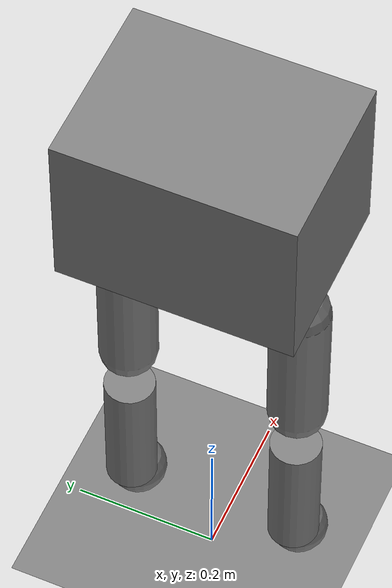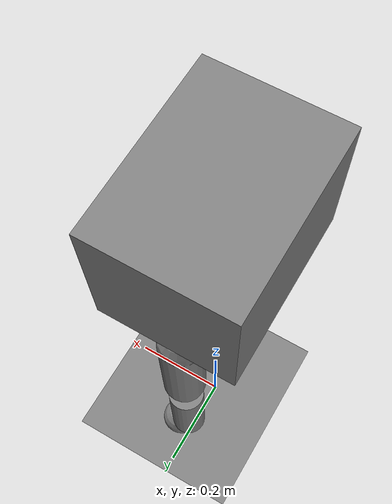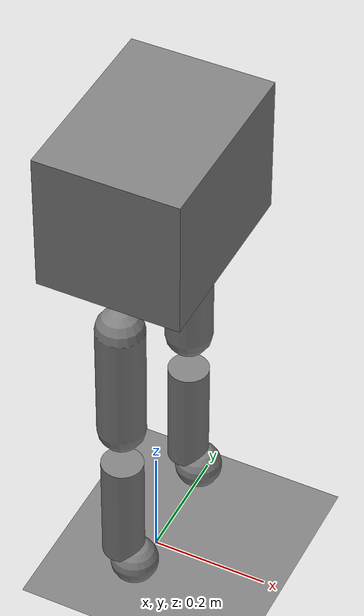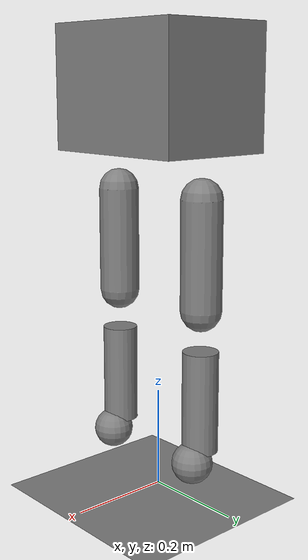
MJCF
<mujoco model="conformance-biped">
  <option timestep="0.002" integrator="implicitfast"/>
  <default>
    <joint damping="0.2" armature="0.005" frictionloss="0.05" range="-2 2"/>
    <motor gear="1"/>
  </default>
  <worldbody>
    <geom name="floor" type="plane" size="0 0 1"/>
    <body name="torso" pos="0 0 0.8">
      <freejoint name="root"/>
      <inertial pos="0 0 0.05" mass="8" diaginertia="0.12 0.1 0.06"/>
      <geom type="box" size="0.12 0.16 0.12"/>
      <body name="left_thigh" pos="0 0.1 -0.15">
        <inertial pos="0 0 -0.14" mass="2" diaginertia="0.02 0.02 0.004"/>
        <joint name="left_hip" axis="0 1 0"/>
        <geom type="capsule" size="0.04" fromto="0 0.02 -0.05 0 0.02 -0.26"/>
        <body name="left_shin" pos="0 0 -0.3">
          <inertial pos="0 0 -0.13" mass="1.2" diaginertia="0.012 0.012 0.002"/>
          <joint name="left_knee" axis="0 1 0" range="0 2.4"/>
          <geom type="cylinder" size="0.035 0.1" pos="0 0.02 -0.14"/>
          <geom type="sphere" size="0.04" pos="0.02 0.02 -0.26"/>
        </body>
      </body>
      <body name="right_thigh" pos="0 -0.1 -0.15">
        <inertial pos="0 0 -0.14" mass="2" diaginertia="0.02 0.02 0.004"/>
        <joint name="right_hip" axis="0 1 0"/>
        <geom type="capsule" size="0.04" fromto="0 -0.02 -0.05 0 -0.02 -0.26"/>
        <body name="right_shin" pos="0 0 -0.3">
          <inertial pos="0 0 -0.13" mass="1.2" diaginertia="0.012 0.012 0.002"/>
          <joint name="right_knee" axis="0 1 0" range="0 2.4"/>
          <geom type="cylinder" size="0.035 0.1" pos="0 -0.02 -0.14"/>
          <geom type="sphere" size="0.04" pos="0.02 -0.02 -0.26"/>
        </body>
      </body>
    </body>
  </worldbody>
  <actuator>
    <motor name="left_hip" joint="left_hip"/>
    <motor name="left_knee" joint="left_knee"/>
    <motor name="right_hip" joint="right_hip"/>
    <motor name="right_knee" joint="right_knee"/>
  </actuator>
</mujoco>
